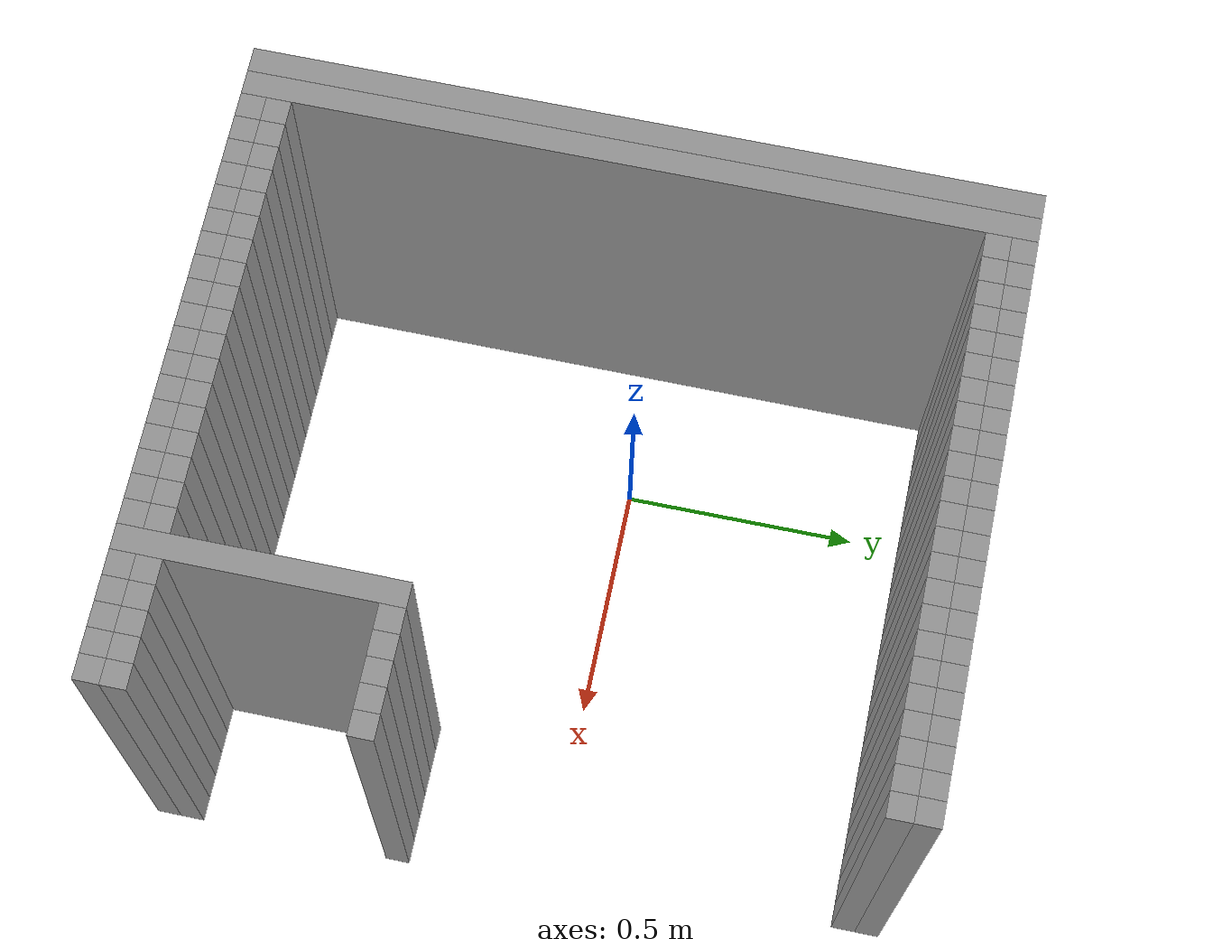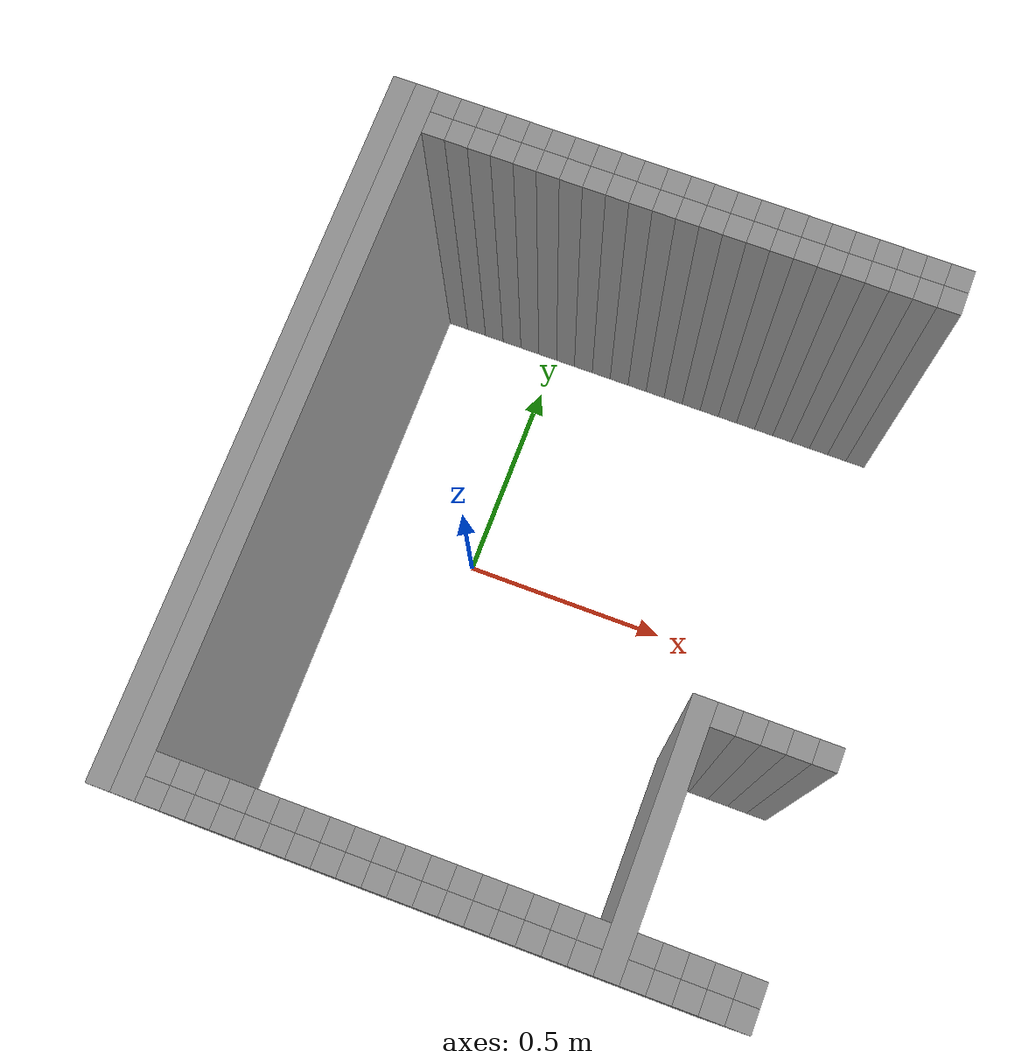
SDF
<sdf version="1.6">
 <model name="optimized_walls">
  <link name="wall_large_0">
   <pose>-0.3710 -0.0700 0.5000 0 0 0</pose>
   <collision name="collision"><geometry><box><size>0.0500 1.5500 1.0</size></box></geometry></collision>
   <visual name="visual">
    <geometry><box><size>0.0500 1.5500 1.0</size></box></geometry>
    <material><script><name>Gazebo/Grey</name></script></material>
   </visual>
  </link>
  <link name="wall_large_1">
   <pose>-0.3210 -0.0700 0.5000 0 0 0</pose>
   <collision name="collision"><geometry><box><size>0.0500 1.5500 1.0</size></box></geometry></collision>
   <visual name="visual">
    <geometry><box><size>0.0500 1.5500 1.0</size></box></geometry>
    <material><script><name>Gazebo/Grey</name></script></material>
   </visual>
  </link>
  <link name="wall_small_2_0">
   <pose>-0.2710 0.6800 0.5000 0 0 0</pose>
   <collision name="collision"><geometry><box><size>0.05 0.05 1.0</size></box></geometry></collision>
   <visual name="visual">
    <geometry><box><size>0.05 0.05 1.0</size></box></geometry>
    <material><script><name>Gazebo/Grey</name></script></material>
   </visual>
  </link>
  <link name="wall_small_2_1">
   <pose>-0.2710 0.6300 0.5000 0 0 0</pose>
   <collision name="collision"><geometry><box><size>0.05 0.05 1.0</size></box></geometry></collision>
   <visual name="visual">
    <geometry><box><size>0.05 0.05 1.0</size></box></geometry>
    <material><script><name>Gazebo/Grey</name></script></material>
   </visual>
  </link>
  <link name="wall_small_3_0">
   <pose>-0.2710 -0.7700 0.5000 0 0 0</pose>
   <collision name="collision"><geometry><box><size>0.05 0.05 1.0</size></box></geometry></collision>
   <visual name="visual">
    <geometry><box><size>0.05 0.05 1.0</size></box></geometry>
    <material><script><name>Gazebo/Grey</name></script></material>
   </visual>
  </link>
  <link name="wall_small_3_1">
   <pose>-0.2710 -0.8200 0.5000 0 0 0</pose>
   <collision name="collision"><geometry><box><size>0.05 0.05 1.0</size></box></geometry></collision>
   <visual name="visual">
    <geometry><box><size>0.05 0.05 1.0</size></box></geometry>
    <material><script><name>Gazebo/Grey</name></script></material>
   </visual>
  </link>
  <link name="wall_small_4_0">
   <pose>-0.2210 0.6800 0.5000 0 0 0</pose>
   <collision name="collision"><geometry><box><size>0.05 0.05 1.0</size></box></geometry></collision>
   <visual name="visual">
    <geometry><box><size>0.05 0.05 1.0</size></box></geometry>
    <material><script><name>Gazebo/Grey</name></script></material>
   </visual>
  </link>
  <link name="wall_small_4_1">
   <pose>-0.2210 0.6300 0.5000 0 0 0</pose>
   <collision name="collision"><geometry><box><size>0.05 0.05 1.0</size></box></geometry></collision>
   <visual name="visual">
    <geometry><box><size>0.05 0.05 1.0</size></box></geometry>
    <material><script><name>Gazebo/Grey</name></script></material>
   </visual>
  </link>
  <link name="wall_small_5_0">
   <pose>-0.2210 -0.7700 0.5000 0 0 0</pose>
   <collision name="collision"><geometry><box><size>0.05 0.05 1.0</size></box></geometry></collision>
   <visual name="visual">
    <geometry><box><size>0.05 0.05 1.0</size></box></geometry>
    <material><script><name>Gazebo/Grey</name></script></material>
   </visual>
  </link>
  <link name="wall_small_5_1">
   <pose>-0.2210 -0.8200 0.5000 0 0 0</pose>
   <collision name="collision"><geometry><box><size>0.05 0.05 1.0</size></box></geometry></collision>
   <visual name="visual">
    <geometry><box><size>0.05 0.05 1.0</size></box></geometry>
    <material><script><name>Gazebo/Grey</name></script></material>
   </visual>
  </link>
  <link name="wall_small_6_0">
   <pose>-0.1710 0.6800 0.5000 0 0 0</pose>
   <collision name="collision"><geometry><box><size>0.05 0.05 1.0</size></box></geometry></collision>
   <visual name="visual">
    <geometry><box><size>0.05 0.05 1.0</size></box></geometry>
    <material><script><name>Gazebo/Grey</name></script></material>
   </visual>
  </link>
  <link name="wall_small_6_1">
   <pose>-0.1710 0.6300 0.5000 0 0 0</pose>
   <collision name="collision"><geometry><box><size>0.05 0.05 1.0</size></box></geometry></collision>
   <visual name="visual">
    <geometry><box><size>0.05 0.05 1.0</size></box></geometry>
    <material><script><name>Gazebo/Grey</name></script></material>
   </visual>
  </link>
  <link name="wall_small_7_0">
   <pose>-0.1710 -0.7700 0.5000 0 0 0</pose>
   <collision name="collision"><geometry><box><size>0.05 0.05 1.0</size></box></geometry></collision>
   <visual name="visual">
    <geometry><box><size>0.05 0.05 1.0</size></box></geometry>
    <material><script><name>Gazebo/Grey</name></script></material>
   </visual>
  </link>
  <link name="wall_small_7_1">
   <pose>-0.1710 -0.8200 0.5000 0 0 0</pose>
   <collision name="collision"><geometry><box><size>0.05 0.05 1.0</size></box></geometry></collision>
   <visual name="visual">
    <geometry><box><size>0.05 0.05 1.0</size></box></geometry>
    <material><script><name>Gazebo/Grey</name></script></material>
   </visual>
  </link>
  <link name="wall_small_8_0">
   <pose>-0.1210 0.6800 0.5000 0 0 0</pose>
   <collision name="collision"><geometry><box><size>0.05 0.05 1.0</size></box></geometry></collision>
   <visual name="visual">
    <geometry><box><size>0.05 0.05 1.0</size></box></geometry>
    <material><script><name>Gazebo/Grey</name></script></material>
   </visual>
  </link>
  <link name="wall_small_8_1">
   <pose>-0.1210 0.6300 0.5000 0 0 0</pose>
   <collision name="collision"><geometry><box><size>0.05 0.05 1.0</size></box></geometry></collision>
   <visual name="visual">
    <geometry><box><size>0.05 0.05 1.0</size></box></geometry>
    <material><script><name>Gazebo/Grey</name></script></material>
   </visual>
  </link>
  <link name="wall_small_9_0">
   <pose>-0.1210 -0.7700 0.5000 0 0 0</pose>
   <collision name="collision"><geometry><box><size>0.05 0.05 1.0</size></box></geometry></collision>
   <visual name="visual">
    <geometry><box><size>0.05 0.05 1.0</size></box></geometry>
    <material><script><name>Gazebo/Grey</name></script></material>
   </visual>
  </link>
  <link name="wall_small_9_1">
   <pose>-0.1210 -0.8200 0.5000 0 0 0</pose>
   <collision name="collision"><geometry><box><size>0.05 0.05 1.0</size></box></geometry></collision>
   <visual name="visual">
    <geometry><box><size>0.05 0.05 1.0</size></box></geometry>
    <material><script><name>Gazebo/Grey</name></script></material>
   </visual>
  </link>
  <link name="wall_small_10_0">
   <pose>-0.0710 0.6800 0.5000 0 0 0</pose>
   <collision name="collision"><geometry><box><size>0.05 0.05 1.0</size></box></geometry></collision>
   <visual name="visual">
    <geometry><box><size>0.05 0.05 1.0</size></box></geometry>
    <material><script><name>Gazebo/Grey</name></script></material>
   </visual>
  </link>
  <link name="wall_small_10_1">
   <pose>-0.0710 0.6300 0.5000 0 0 0</pose>
   <collision name="collision"><geometry><box><size>0.05 0.05 1.0</size></box></geometry></collision>
   <visual name="visual">
    <geometry><box><size>0.05 0.05 1.0</size></box></geometry>
    <material><script><name>Gazebo/Grey</name></script></material>
   </visual>
  </link>
  <link name="wall_small_11_0">
   <pose>-0.0710 -0.7700 0.5000 0 0 0</pose>
   <collision name="collision"><geometry><box><size>0.05 0.05 1.0</size></box></geometry></collision>
   <visual name="visual">
    <geometry><box><size>0.05 0.05 1.0</size></box></geometry>
    <material><script><name>Gazebo/Grey</name></script></material>
   </visual>
  </link>
  <link name="wall_small_11_1">
   <pose>-0.0710 -0.8200 0.5000 0 0 0</pose>
   <collision name="collision"><geometry><box><size>0.05 0.05 1.0</size></box></geometry></collision>
   <visual name="visual">
    <geometry><box><size>0.05 0.05 1.0</size></box></geometry>
    <material><script><name>Gazebo/Grey</name></script></material>
   </visual>
  </link>
  <link name="wall_small_12_0">
   <pose>-0.0210 0.6800 0.5000 0 0 0</pose>
   <collision name="collision"><geometry><box><size>0.05 0.05 1.0</size></box></geometry></collision>
   <visual name="visual">
    <geometry><box><size>0.05 0.05 1.0</size></box></geometry>
    <material><script><name>Gazebo/Grey</name></script></material>
   </visual>
  </link>
  <link name="wall_small_12_1">
   <pose>-0.0210 0.6300 0.5000 0 0 0</pose>
   <collision name="collision"><geometry><box><size>0.05 0.05 1.0</size></box></geometry></collision>
   <visual name="visual">
    <geometry><box><size>0.05 0.05 1.0</size></box></geometry>
    <material><script><name>Gazebo/Grey</name></script></material>
   </visual>
  </link>
  <link name="wall_small_13_0">
   <pose>-0.0210 -0.7700 0.5000 0 0 0</pose>
   <collision name="collision"><geometry><box><size>0.05 0.05 1.0</size></box></geometry></collision>
   <visual name="visual">
    <geometry><box><size>0.05 0.05 1.0</size></box></geometry>
    <material><script><name>Gazebo/Grey</name></script></material>
   </visual>
  </link>
  <link name="wall_small_13_1">
   <pose>-0.0210 -0.8200 0.5000 0 0 0</pose>
   <collision name="collision"><geometry><box><size>0.05 0.05 1.0</size></box></geometry></collision>
   <visual name="visual">
    <geometry><box><size>0.05 0.05 1.0</size></box></geometry>
    <material><script><name>Gazebo/Grey</name></script></material>
   </visual>
  </link>
  <link name="wall_small_14_0">
   <pose>0.0290 0.6800 0.5000 0 0 0</pose>
   <collision name="collision"><geometry><box><size>0.05 0.05 1.0</size></box></geometry></collision>
   <visual name="visual">
    <geometry><box><size>0.05 0.05 1.0</size></box></geometry>
    <material><script><name>Gazebo/Grey</name></script></material>
   </visual>
  </link>
  <link name="wall_small_14_1">
   <pose>0.0290 0.6300 0.5000 0 0 0</pose>
   <collision name="collision"><geometry><box><size>0.05 0.05 1.0</size></box></geometry></collision>
   <visual name="visual">
    <geometry><box><size>0.05 0.05 1.0</size></box></geometry>
    <material><script><name>Gazebo/Grey</name></script></material>
   </visual>
  </link>
  <link name="wall_small_15_0">
   <pose>0.0290 -0.7700 0.5000 0 0 0</pose>
   <collision name="collision"><geometry><box><size>0.05 0.05 1.0</size></box></geometry></collision>
   <visual name="visual">
    <geometry><box><size>0.05 0.05 1.0</size></box></geometry>
    <material><script><name>Gazebo/Grey</name></script></material>
   </visual>
  </link>
  <link name="wall_small_15_1">
   <pose>0.0290 -0.8200 0.5000 0 0 0</pose>
   <collision name="collision"><geometry><box><size>0.05 0.05 1.0</size></box></geometry></collision>
   <visual name="visual">
    <geometry><box><size>0.05 0.05 1.0</size></box></geometry>
    <material><script><name>Gazebo/Grey</name></script></material>
   </visual>
  </link>
  <link name="wall_small_16_0">
   <pose>0.0790 0.6800 0.5000 0 0 0</pose>
   <collision name="collision"><geometry><box><size>0.05 0.05 1.0</size></box></geometry></collision>
   <visual name="visual">
    <geometry><box><size>0.05 0.05 1.0</size></box></geometry>
    <material><script><name>Gazebo/Grey</name></script></material>
   </visual>
  </link>
  <link name="wall_small_16_1">
   <pose>0.0790 0.6300 0.5000 0 0 0</pose>
   <collision name="collision"><geometry><box><size>0.05 0.05 1.0</size></box></geometry></collision>
   <visual name="visual">
    <geometry><box><size>0.05 0.05 1.0</size></box></geometry>
    <material><script><name>Gazebo/Grey</name></script></material>
   </visual>
  </link>
  <link name="wall_small_17_0">
   <pose>0.0790 -0.7700 0.5000 0 0 0</pose>
   <collision name="collision"><geometry><box><size>0.05 0.05 1.0</size></box></geometry></collision>
   <visual name="visual">
    <geometry><box><size>0.05 0.05 1.0</size></box></geometry>
    <material><script><name>Gazebo/Grey</name></script></material>
   </visual>
  </link>
  <link name="wall_small_17_1">
   <pose>0.0790 -0.8200 0.5000 0 0 0</pose>
   <collision name="collision"><geometry><box><size>0.05 0.05 1.0</size></box></geometry></collision>
   <visual name="visual">
    <geometry><box><size>0.05 0.05 1.0</size></box></geometry>
    <material><script><name>Gazebo/Grey</name></script></material>
   </visual>
  </link>
  <link name="wall_small_18_0">
   <pose>0.1290 0.6800 0.5000 0 0 0</pose>
   <collision name="collision"><geometry><box><size>0.05 0.05 1.0</size></box></geometry></collision>
   <visual name="visual">
    <geometry><box><size>0.05 0.05 1.0</size></box></geometry>
    <material><script><name>Gazebo/Grey</name></script></material>
   </visual>
  </link>
  <link name="wall_small_18_1">
   <pose>0.1290 0.6300 0.5000 0 0 0</pose>
   <collision name="collision"><geometry><box><size>0.05 0.05 1.0</size></box></geometry></collision>
   <visual name="visual">
    <geometry><box><size>0.05 0.05 1.0</size></box></geometry>
    <material><script><name>Gazebo/Grey</name></script></material>
   </visual>
  </link>
  <link name="wall_small_19_0">
   <pose>0.1290 -0.7700 0.5000 0 0 0</pose>
   <collision name="collision"><geometry><box><size>0.05 0.05 1.0</size></box></geometry></collision>
   <visual name="visual">
    <geometry><box><size>0.05 0.05 1.0</size></box></geometry>
    <material><script><name>Gazebo/Grey</name></script></material>
   </visual>
  </link>
  <link name="wall_small_19_1">
   <pose>0.1290 -0.8200 0.5000 0 0 0</pose>
   <collision name="collision"><geometry><box><size>0.05 0.05 1.0</size></box></geometry></collision>
   <visual name="visual">
    <geometry><box><size>0.05 0.05 1.0</size></box></geometry>
    <material><script><name>Gazebo/Grey</name></script></material>
   </visual>
  </link>
  <link name="wall_small_20_0">
   <pose>0.1790 0.6800 0.5000 0 0 0</pose>
   <collision name="collision"><geometry><box><size>0.05 0.05 1.0</size></box></geometry></collision>
   <visual name="visual">
    <geometry><box><size>0.05 0.05 1.0</size></box></geometry>
    <material><script><name>Gazebo/Grey</name></script></material>
   </visual>
  </link>
  <link name="wall_small_20_1">
   <pose>0.1790 0.6300 0.5000 0 0 0</pose>
   <collision name="collision"><geometry><box><size>0.05 0.05 1.0</size></box></geometry></collision>
   <visual name="visual">
    <geometry><box><size>0.05 0.05 1.0</size></box></geometry>
    <material><script><name>Gazebo/Grey</name></script></material>
   </visual>
  </link>
  <link name="wall_small_21_0">
   <pose>0.1790 -0.7700 0.5000 0 0 0</pose>
   <collision name="collision"><geometry><box><size>0.05 0.05 1.0</size></box></geometry></collision>
   <visual name="visual">
    <geometry><box><size>0.05 0.05 1.0</size></box></geometry>
    <material><script><name>Gazebo/Grey</name></script></material>
   </visual>
  </link>
  <link name="wall_small_21_1">
   <pose>0.1790 -0.8200 0.5000 0 0 0</pose>
   <collision name="collision"><geometry><box><size>0.05 0.05 1.0</size></box></geometry></collision>
   <visual name="visual">
    <geometry><box><size>0.05 0.05 1.0</size></box></geometry>
    <material><script><name>Gazebo/Grey</name></script></material>
   </visual>
  </link>
  <link name="wall_small_22_0">
   <pose>0.2290 0.6800 0.5000 0 0 0</pose>
   <collision name="collision"><geometry><box><size>0.05 0.05 1.0</size></box></geometry></collision>
   <visual name="visual">
    <geometry><box><size>0.05 0.05 1.0</size></box></geometry>
    <material><script><name>Gazebo/Grey</name></script></material>
   </visual>
  </link>
  <link name="wall_small_22_1">
   <pose>0.2290 0.6300 0.5000 0 0 0</pose>
   <collision name="collision"><geometry><box><size>0.05 0.05 1.0</size></box></geometry></collision>
   <visual name="visual">
    <geometry><box><size>0.05 0.05 1.0</size></box></geometry>
    <material><script><name>Gazebo/Grey</name></script></material>
   </visual>
  </link>
  <link name="wall_small_23_0">
   <pose>0.2290 -0.7700 0.5000 0 0 0</pose>
   <collision name="collision"><geometry><box><size>0.05 0.05 1.0</size></box></geometry></collision>
   <visual name="visual">
    <geometry><box><size>0.05 0.05 1.0</size></box></geometry>
    <material><script><name>Gazebo/Grey</name></script></material>
   </visual>
  </link>
  <link name="wall_small_23_1">
   <pose>0.2290 -0.8200 0.5000 0 0 0</pose>
   <collision name="collision"><geometry><box><size>0.05 0.05 1.0</size></box></geometry></collision>
   <visual name="visual">
    <geometry><box><size>0.05 0.05 1.0</size></box></geometry>
    <material><script><name>Gazebo/Grey</name></script></material>
   </visual>
  </link>
  <link name="wall_small_24_0">
   <pose>0.2790 0.6800 0.5000 0 0 0</pose>
   <collision name="collision"><geometry><box><size>0.05 0.05 1.0</size></box></geometry></collision>
   <visual name="visual">
    <geometry><box><size>0.05 0.05 1.0</size></box></geometry>
    <material><script><name>Gazebo/Grey</name></script></material>
   </visual>
  </link>
  <link name="wall_small_24_1">
   <pose>0.2790 0.6300 0.5000 0 0 0</pose>
   <collision name="collision"><geometry><box><size>0.05 0.05 1.0</size></box></geometry></collision>
   <visual name="visual">
    <geometry><box><size>0.05 0.05 1.0</size></box></geometry>
    <material><script><name>Gazebo/Grey</name></script></material>
   </visual>
  </link>
  <link name="wall_small_25_0">
   <pose>0.2790 -0.7700 0.5000 0 0 0</pose>
   <collision name="collision"><geometry><box><size>0.05 0.05 1.0</size></box></geometry></collision>
   <visual name="visual">
    <geometry><box><size>0.05 0.05 1.0</size></box></geometry>
    <material><script><name>Gazebo/Grey</name></script></material>
   </visual>
  </link>
  <link name="wall_small_25_1">
   <pose>0.2790 -0.8200 0.5000 0 0 0</pose>
   <collision name="collision"><geometry><box><size>0.05 0.05 1.0</size></box></geometry></collision>
   <visual name="visual">
    <geometry><box><size>0.05 0.05 1.0</size></box></geometry>
    <material><script><name>Gazebo/Grey</name></script></material>
   </visual>
  </link>
  <link name="wall_small_26_0">
   <pose>0.3290 0.6800 0.5000 0 0 0</pose>
   <collision name="collision"><geometry><box><size>0.05 0.05 1.0</size></box></geometry></collision>
   <visual name="visual">
    <geometry><box><size>0.05 0.05 1.0</size></box></geometry>
    <material><script><name>Gazebo/Grey</name></script></material>
   </visual>
  </link>
  <link name="wall_small_26_1">
   <pose>0.3290 0.6300 0.5000 0 0 0</pose>
   <collision name="collision"><geometry><box><size>0.05 0.05 1.0</size></box></geometry></collision>
   <visual name="visual">
    <geometry><box><size>0.05 0.05 1.0</size></box></geometry>
    <material><script><name>Gazebo/Grey</name></script></material>
   </visual>
  </link>
  <link name="wall_small_27_0">
   <pose>0.3290 -0.7700 0.5000 0 0 0</pose>
   <collision name="collision"><geometry><box><size>0.05 0.05 1.0</size></box></geometry></collision>
   <visual name="visual">
    <geometry><box><size>0.05 0.05 1.0</size></box></geometry>
    <material><script><name>Gazebo/Grey</name></script></material>
   </visual>
  </link>
  <link name="wall_small_27_1">
   <pose>0.3290 -0.8200 0.5000 0 0 0</pose>
   <collision name="collision"><geometry><box><size>0.05 0.05 1.0</size></box></geometry></collision>
   <visual name="visual">
    <geometry><box><size>0.05 0.05 1.0</size></box></geometry>
    <material><script><name>Gazebo/Grey</name></script></material>
   </visual>
  </link>
  <link name="wall_small_28_0">
   <pose>0.3790 0.6800 0.5000 0 0 0</pose>
   <collision name="collision"><geometry><box><size>0.05 0.05 1.0</size></box></geometry></collision>
   <visual name="visual">
    <geometry><box><size>0.05 0.05 1.0</size></box></geometry>
    <material><script><name>Gazebo/Grey</name></script></material>
   </visual>
  </link>
  <link name="wall_small_28_1">
   <pose>0.3790 0.6300 0.5000 0 0 0</pose>
   <collision name="collision"><geometry><box><size>0.05 0.05 1.0</size></box></geometry></collision>
   <visual name="visual">
    <geometry><box><size>0.05 0.05 1.0</size></box></geometry>
    <material><script><name>Gazebo/Grey</name></script></material>
   </visual>
  </link>
  <link name="wall_small_29_0">
   <pose>0.3790 -0.7700 0.5000 0 0 0</pose>
   <collision name="collision"><geometry><box><size>0.05 0.05 1.0</size></box></geometry></collision>
   <visual name="visual">
    <geometry><box><size>0.05 0.05 1.0</size></box></geometry>
    <material><script><name>Gazebo/Grey</name></script></material>
   </visual>
  </link>
  <link name="wall_small_29_1">
   <pose>0.3790 -0.8200 0.5000 0 0 0</pose>
   <collision name="collision"><geometry><box><size>0.05 0.05 1.0</size></box></geometry></collision>
   <visual name="visual">
    <geometry><box><size>0.05 0.05 1.0</size></box></geometry>
    <material><script><name>Gazebo/Grey</name></script></material>
   </visual>
  </link>
  <link name="wall_small_30_0">
   <pose>0.4290 0.6800 0.5000 0 0 0</pose>
   <collision name="collision"><geometry><box><size>0.05 0.05 1.0</size></box></geometry></collision>
   <visual name="visual">
    <geometry><box><size>0.05 0.05 1.0</size></box></geometry>
    <material><script><name>Gazebo/Grey</name></script></material>
   </visual>
  </link>
  <link name="wall_small_30_1">
   <pose>0.4290 0.6300 0.5000 0 0 0</pose>
   <collision name="collision"><geometry><box><size>0.05 0.05 1.0</size></box></geometry></collision>
   <visual name="visual">
    <geometry><box><size>0.05 0.05 1.0</size></box></geometry>
    <material><script><name>Gazebo/Grey</name></script></material>
   </visual>
  </link>
  <link name="wall_small_31_0">
   <pose>0.4290 -0.7700 0.5000 0 0 0</pose>
   <collision name="collision"><geometry><box><size>0.05 0.05 1.0</size></box></geometry></collision>
   <visual name="visual">
    <geometry><box><size>0.05 0.05 1.0</size></box></geometry>
    <material><script><name>Gazebo/Grey</name></script></material>
   </visual>
  </link>
  <link name="wall_small_31_1">
   <pose>0.4290 -0.8200 0.5000 0 0 0</pose>
   <collision name="collision"><geometry><box><size>0.05 0.05 1.0</size></box></geometry></collision>
   <visual name="visual">
    <geometry><box><size>0.05 0.05 1.0</size></box></geometry>
    <material><script><name>Gazebo/Grey</name></script></material>
   </visual>
  </link>
  <link name="wall_small_32_0">
   <pose>0.4790 0.6800 0.5000 0 0 0</pose>
   <collision name="collision"><geometry><box><size>0.05 0.05 1.0</size></box></geometry></collision>
   <visual name="visual">
    <geometry><box><size>0.05 0.05 1.0</size></box></geometry>
    <material><script><name>Gazebo/Grey</name></script></material>
   </visual>
  </link>
  <link name="wall_small_32_1">
   <pose>0.4790 0.6300 0.5000 0 0 0</pose>
   <collision name="collision"><geometry><box><size>0.05 0.05 1.0</size></box></geometry></collision>
   <visual name="visual">
    <geometry><box><size>0.05 0.05 1.0</size></box></geometry>
    <material><script><name>Gazebo/Grey</name></script></material>
   </visual>
  </link>
  <link name="wall_small_33_0">
   <pose>0.4790 -0.7700 0.5000 0 0 0</pose>
   <collision name="collision"><geometry><box><size>0.05 0.05 1.0</size></box></geometry></collision>
   <visual name="visual">
    <geometry><box><size>0.05 0.05 1.0</size></box></geometry>
    <material><script><name>Gazebo/Grey</name></script></material>
   </visual>
  </link>
  <link name="wall_small_33_1">
   <pose>0.4790 -0.8200 0.5000 0 0 0</pose>
   <collision name="collision"><geometry><box><size>0.05 0.05 1.0</size></box></geometry></collision>
   <visual name="visual">
    <geometry><box><size>0.05 0.05 1.0</size></box></geometry>
    <material><script><name>Gazebo/Grey</name></script></material>
   </visual>
  </link>
  <link name="wall_small_34_0">
   <pose>0.5290 0.6800 0.5000 0 0 0</pose>
   <collision name="collision"><geometry><box><size>0.05 0.05 1.0</size></box></geometry></collision>
   <visual name="visual">
    <geometry><box><size>0.05 0.05 1.0</size></box></geometry>
    <material><script><name>Gazebo/Grey</name></script></material>
   </visual>
  </link>
  <link name="wall_small_34_1">
   <pose>0.5290 0.6300 0.5000 0 0 0</pose>
   <collision name="collision"><geometry><box><size>0.05 0.05 1.0</size></box></geometry></collision>
   <visual name="visual">
    <geometry><box><size>0.05 0.05 1.0</size></box></geometry>
    <material><script><name>Gazebo/Grey</name></script></material>
   </visual>
  </link>
  <link name="wall_small_35_0">
   <pose>0.5290 -0.7700 0.5000 0 0 0</pose>
   <collision name="collision"><geometry><box><size>0.05 0.05 1.0</size></box></geometry></collision>
   <visual name="visual">
    <geometry><box><size>0.05 0.05 1.0</size></box></geometry>
    <material><script><name>Gazebo/Grey</name></script></material>
   </visual>
  </link>
  <link name="wall_small_35_1">
   <pose>0.5290 -0.8200 0.5000 0 0 0</pose>
   <collision name="collision"><geometry><box><size>0.05 0.05 1.0</size></box></geometry></collision>
   <visual name="visual">
    <geometry><box><size>0.05 0.05 1.0</size></box></geometry>
    <material><script><name>Gazebo/Grey</name></script></material>
   </visual>
  </link>
  <link name="wall_small_36_0">
   <pose>0.5790 0.6800 0.5000 0 0 0</pose>
   <collision name="collision"><geometry><box><size>0.05 0.05 1.0</size></box></geometry></collision>
   <visual name="visual">
    <geometry><box><size>0.05 0.05 1.0</size></box></geometry>
    <material><script><name>Gazebo/Grey</name></script></material>
   </visual>
  </link>
  <link name="wall_small_36_1">
   <pose>0.5790 0.6300 0.5000 0 0 0</pose>
   <collision name="collision"><geometry><box><size>0.05 0.05 1.0</size></box></geometry></collision>
   <visual name="visual">
    <geometry><box><size>0.05 0.05 1.0</size></box></geometry>
    <material><script><name>Gazebo/Grey</name></script></material>
   </visual>
  </link>
  <link name="wall_small_37_0">
   <pose>0.5790 -0.7700 0.5000 0 0 0</pose>
   <collision name="collision"><geometry><box><size>0.05 0.05 1.0</size></box></geometry></collision>
   <visual name="visual">
    <geometry><box><size>0.05 0.05 1.0</size></box></geometry>
    <material><script><name>Gazebo/Grey</name></script></material>
   </visual>
  </link>
  <link name="wall_small_37_1">
   <pose>0.5790 -0.8200 0.5000 0 0 0</pose>
   <collision name="collision"><geometry><box><size>0.05 0.05 1.0</size></box></geometry></collision>
   <visual name="visual">
    <geometry><box><size>0.05 0.05 1.0</size></box></geometry>
    <material><script><name>Gazebo/Grey</name></script></material>
   </visual>
  </link>
  <link name="wall_small_38_0">
   <pose>0.6290 0.6800 0.5000 0 0 0</pose>
   <collision name="collision"><geometry><box><size>0.05 0.05 1.0</size></box></geometry></collision>
   <visual name="visual">
    <geometry><box><size>0.05 0.05 1.0</size></box></geometry>
    <material><script><name>Gazebo/Grey</name></script></material>
   </visual>
  </link>
  <link name="wall_small_38_1">
   <pose>0.6290 0.6300 0.5000 0 0 0</pose>
   <collision name="collision"><geometry><box><size>0.05 0.05 1.0</size></box></geometry></collision>
   <visual name="visual">
    <geometry><box><size>0.05 0.05 1.0</size></box></geometry>
    <material><script><name>Gazebo/Grey</name></script></material>
   </visual>
  </link>
  <link name="wall_large_39">
   <pose>0.6290 -0.5700 0.5000 0 0 0</pose>
   <collision name="collision"><geometry><box><size>0.0500 0.5500 1.0</size></box></geometry></collision>
   <visual name="visual">
    <geometry><box><size>0.0500 0.5500 1.0</size></box></geometry>
    <material><script><name>Gazebo/Grey</name></script></material>
   </visual>
  </link>
  <link name="wall_small_40_0">
   <pose>0.6790 0.6800 0.5000 0 0 0</pose>
   <collision name="collision"><geometry><box><size>0.05 0.05 1.0</size></box></geometry></collision>
   <visual name="visual">
    <geometry><box><size>0.05 0.05 1.0</size></box></geometry>
    <material><script><name>Gazebo/Grey</name></script></material>
   </visual>
  </link>
  <link name="wall_small_40_1">
   <pose>0.6790 0.6300 0.5000 0 0 0</pose>
   <collision name="collision"><geometry><box><size>0.05 0.05 1.0</size></box></geometry></collision>
   <visual name="visual">
    <geometry><box><size>0.05 0.05 1.0</size></box></geometry>
    <material><script><name>Gazebo/Grey</name></script></material>
   </visual>
  </link>
  <link name="wall_small_41_0">
   <pose>0.6790 -0.3200 0.5000 0 0 0</pose>
   <collision name="collision"><geometry><box><size>0.05 0.05 1.0</size></box></geometry></collision>
   <visual name="visual">
    <geometry><box><size>0.05 0.05 1.0</size></box></geometry>
    <material><script><name>Gazebo/Grey</name></script></material>
   </visual>
  </link>
  <link name="wall_small_42_0">
   <pose>0.6790 -0.7700 0.5000 0 0 0</pose>
   <collision name="collision"><geometry><box><size>0.05 0.05 1.0</size></box></geometry></collision>
   <visual name="visual">
    <geometry><box><size>0.05 0.05 1.0</size></box></geometry>
    <material><script><name>Gazebo/Grey</name></script></material>
   </visual>
  </link>
  <link name="wall_small_42_1">
   <pose>0.6790 -0.8200 0.5000 0 0 0</pose>
   <collision name="collision"><geometry><box><size>0.05 0.05 1.0</size></box></geometry></collision>
   <visual name="visual">
    <geometry><box><size>0.05 0.05 1.0</size></box></geometry>
    <material><script><name>Gazebo/Grey</name></script></material>
   </visual>
  </link>
  <link name="wall_small_43_0">
   <pose>0.7290 0.6800 0.5000 0 0 0</pose>
   <collision name="collision"><geometry><box><size>0.05 0.05 1.0</size></box></geometry></collision>
   <visual name="visual">
    <geometry><box><size>0.05 0.05 1.0</size></box></geometry>
    <material><script><name>Gazebo/Grey</name></script></material>
   </visual>
  </link>
  <link name="wall_small_43_1">
   <pose>0.7290 0.6300 0.5000 0 0 0</pose>
   <collision name="collision"><geometry><box><size>0.05 0.05 1.0</size></box></geometry></collision>
   <visual name="visual">
    <geometry><box><size>0.05 0.05 1.0</size></box></geometry>
    <material><script><name>Gazebo/Grey</name></script></material>
   </visual>
  </link>
  <link name="wall_small_44_0">
   <pose>0.7290 -0.3200 0.5000 0 0 0</pose>
   <collision name="collision"><geometry><box><size>0.05 0.05 1.0</size></box></geometry></collision>
   <visual name="visual">
    <geometry><box><size>0.05 0.05 1.0</size></box></geometry>
    <material><script><name>Gazebo/Grey</name></script></material>
   </visual>
  </link>
  <link name="wall_small_45_0">
   <pose>0.7290 -0.7700 0.5000 0 0 0</pose>
   <collision name="collision"><geometry><box><size>0.05 0.05 1.0</size></box></geometry></collision>
   <visual name="visual">
    <geometry><box><size>0.05 0.05 1.0</size></box></geometry>
    <material><script><name>Gazebo/Grey</name></script></material>
   </visual>
  </link>
  <link name="wall_small_45_1">
   <pose>0.7290 -0.8200 0.5000 0 0 0</pose>
   <collision name="collision"><geometry><box><size>0.05 0.05 1.0</size></box></geometry></collision>
   <visual name="visual">
    <geometry><box><size>0.05 0.05 1.0</size></box></geometry>
    <material><script><name>Gazebo/Grey</name></script></material>
   </visual>
  </link>
  <link name="wall_small_46_0">
   <pose>0.7790 0.6800 0.5000 0 0 0</pose>
   <collision name="collision"><geometry><box><size>0.05 0.05 1.0</size></box></geometry></collision>
   <visual name="visual">
    <geometry><box><size>0.05 0.05 1.0</size></box></geometry>
    <material><script><name>Gazebo/Grey</name></script></material>
   </visual>
  </link>
  <link name="wall_small_46_1">
   <pose>0.7790 0.6300 0.5000 0 0 0</pose>
   <collision name="collision"><geometry><box><size>0.05 0.05 1.0</size></box></geometry></collision>
   <visual name="visual">
    <geometry><box><size>0.05 0.05 1.0</size></box></geometry>
    <material><script><name>Gazebo/Grey</name></script></material>
   </visual>
  </link>
  <link name="wall_small_47_0">
   <pose>0.7790 -0.3200 0.5000 0 0 0</pose>
   <collision name="collision"><geometry><box><size>0.05 0.05 1.0</size></box></geometry></collision>
   <visual name="visual">
    <geometry><box><size>0.05 0.05 1.0</size></box></geometry>
    <material><script><name>Gazebo/Grey</name></script></material>
   </visual>
  </link>
  <link name="wall_small_48_0">
   <pose>0.7790 -0.7700 0.5000 0 0 0</pose>
   <collision name="collision"><geometry><box><size>0.05 0.05 1.0</size></box></geometry></collision>
   <visual name="visual">
    <geometry><box><size>0.05 0.05 1.0</size></box></geometry>
    <material><script><name>Gazebo/Grey</name></script></material>
   </visual>
  </link>
  <link name="wall_small_48_1">
   <pose>0.7790 -0.8200 0.5000 0 0 0</pose>
   <collision name="collision"><geometry><box><size>0.05 0.05 1.0</size></box></geometry></collision>
   <visual name="visual">
    <geometry><box><size>0.05 0.05 1.0</size></box></geometry>
    <material><script><name>Gazebo/Grey</name></script></material>
   </visual>
  </link>
  <link name="wall_small_49_0">
   <pose>0.8290 0.6800 0.5000 0 0 0</pose>
   <collision name="collision"><geometry><box><size>0.05 0.05 1.0</size></box></geometry></collision>
   <visual name="visual">
    <geometry><box><size>0.05 0.05 1.0</size></box></geometry>
    <material><script><name>Gazebo/Grey</name></script></material>
   </visual>
  </link>
  <link name="wall_small_49_1">
   <pose>0.8290 0.6300 0.5000 0 0 0</pose>
   <collision name="collision"><geometry><box><size>0.05 0.05 1.0</size></box></geometry></collision>
   <visual name="visual">
    <geometry><box><size>0.05 0.05 1.0</size></box></geometry>
    <material><script><name>Gazebo/Grey</name></script></material>
   </visual>
  </link>
  <link name="wall_small_50_0">
   <pose>0.8290 -0.3200 0.5000 0 0 0</pose>
   <collision name="collision"><geometry><box><size>0.05 0.05 1.0</size></box></geometry></collision>
   <visual name="visual">
    <geometry><box><size>0.05 0.05 1.0</size></box></geometry>
    <material><script><name>Gazebo/Grey</name></script></material>
   </visual>
  </link>
  <link name="wall_small_51_0">
   <pose>0.8290 -0.7700 0.5000 0 0 0</pose>
   <collision name="collision"><geometry><box><size>0.05 0.05 1.0</size></box></geometry></collision>
   <visual name="visual">
    <geometry><box><size>0.05 0.05 1.0</size></box></geometry>
    <material><script><name>Gazebo/Grey</name></script></material>
   </visual>
  </link>
  <link name="wall_small_51_1">
   <pose>0.8290 -0.8200 0.5000 0 0 0</pose>
   <collision name="collision"><geometry><box><size>0.05 0.05 1.0</size></box></geometry></collision>
   <visual name="visual">
    <geometry><box><size>0.05 0.05 1.0</size></box></geometry>
    <material><script><name>Gazebo/Grey</name></script></material>
   </visual>
  </link>
  <link name="wall_small_53_0">
   <pose>0.8790 -0.3200 0.5000 0 0 0</pose>
   <collision name="collision"><geometry><box><size>0.05 0.05 1.0</size></box></geometry></collision>
   <visual name="visual">
    <geometry><box><size>0.05 0.05 1.0</size></box></geometry>
    <material><script><name>Gazebo/Grey</name></script></material>
   </visual>
  </link>
  <link name="wall_small_54_0">
   <pose>0.8790 -0.7700 0.5000 0 0 0</pose>
   <collision name="collision"><geometry><box><size>0.05 0.05 1.0</size></box></geometry></collision>
   <visual name="visual">
    <geometry><box><size>0.05 0.05 1.0</size></box></geometry>
    <material><script><name>Gazebo/Grey</name></script></material>
   </visual>
  </link>
  <link name="wall_small_54_1">
   <pose>0.8790 -0.8200 0.5000 0 0 0</pose>
   <collision name="collision"><geometry><box><size>0.05 0.05 1.0</size></box></geometry></collision>
   <visual name="visual">
    <geometry><box><size>0.05 0.05 1.0</size></box></geometry>
    <material><script><name>Gazebo/Grey</name></script></material>
   </visual>
  </link>
 </model>
</sdf>
